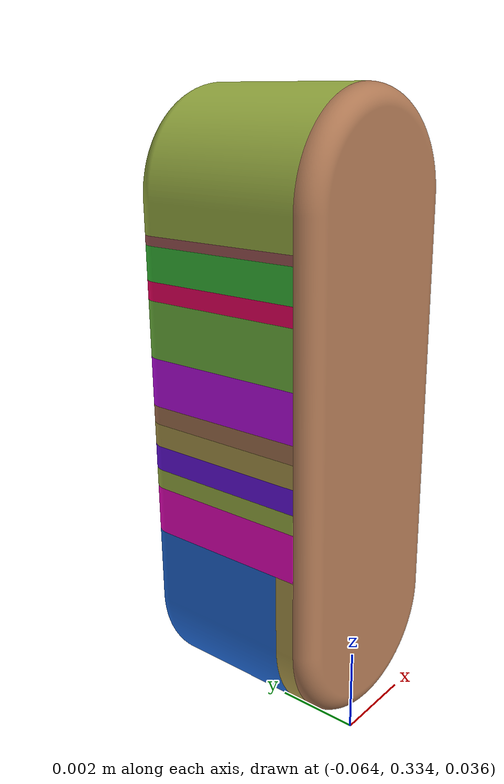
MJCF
<!-- mass 와 inertia 가 없네.. -->
<mujoco>
    <asset>
            <mesh name="Tablet_posmod_collision_(1)" file="./Tablet_posmod_collision_(1).obj" scale="0.001 0.001 0.001"/>
            <mesh name="Tablet_posmod_collision_(10)" file="./Tablet_posmod_collision_(10).obj" scale="0.001 0.001 0.001"/>
            <mesh name="Tablet_posmod_collision_(11)" file="./Tablet_posmod_collision_(11).obj" scale="0.001 0.001 0.001"/>
            <mesh name="Tablet_posmod_collision_(12)" file="./Tablet_posmod_collision_(12).obj" scale="0.001 0.001 0.001"/>
            <mesh name="Tablet_posmod_collision_(13)" file="./Tablet_posmod_collision_(13).obj" scale="0.001 0.001 0.001"/>
            <mesh name="Tablet_posmod_collision_(14)" file="./Tablet_posmod_collision_(14).obj" scale="0.001 0.001 0.001"/>
            <mesh name="Tablet_posmod_collision_(15)" file="./Tablet_posmod_collision_(15).obj" scale="0.001 0.001 0.001"/>
            <mesh name="Tablet_posmod_collision_(16)" file="./Tablet_posmod_collision_(16).obj" scale="0.001 0.001 0.001"/>
            <mesh name="Tablet_posmod_collision_(17)" file="./Tablet_posmod_collision_(17).obj" scale="0.001 0.001 0.001"/>
            <mesh name="Tablet_posmod_collision_(18)" file="./Tablet_posmod_collision_(18).obj" scale="0.001 0.001 0.001"/>
            <mesh name="Tablet_posmod_collision_(19)" file="./Tablet_posmod_collision_(19).obj" scale="0.001 0.001 0.001"/>
            <mesh name="Tablet_posmod_collision_(2)" file="./Tablet_posmod_collision_(2).obj" scale="0.001 0.001 0.001"/>
            <mesh name="Tablet_posmod_collision_(3)" file="./Tablet_posmod_collision_(3).obj" scale="0.001 0.001 0.001"/>
            <mesh name="Tablet_posmod_collision_(4)" file="./Tablet_posmod_collision_(4).obj" scale="0.001 0.001 0.001"/>
            <mesh name="Tablet_posmod_collision_(5)" file="./Tablet_posmod_collision_(5).obj" scale="0.001 0.001 0.001"/>
            <mesh name="Tablet_posmod_collision_(6)" file="./Tablet_posmod_collision_(6).obj" scale="0.001 0.001 0.001"/>
            <mesh name="Tablet_posmod_collision_(7)" file="./Tablet_posmod_collision_(7).obj" scale="0.001 0.001 0.001"/>
            <mesh name="Tablet_posmod_collision_(8)" file="./Tablet_posmod_collision_(8).obj" scale="0.001 0.001 0.001"/>
            <mesh name="Tablet_posmod_collision_(9)" file="./Tablet_posmod_collision_(9).obj" scale="0.001 0.001 0.001"/>

    </asset>
    <worldbody>
        <body name="tablet" pos="-0.06 0.33947925 0.03555163" quat="0.70710678 0.70710678 0 0">
            <geom rgba="0.675 0.465 0.325 1" type="mesh" mesh="Tablet_posmod_collision_(1)"/>
            <geom rgba="0.700 0.620 0.300 1" type="mesh" mesh="Tablet_posmod_collision_(10)"/>
            <geom rgba="0.635 0.725 0.275 1" type="mesh" mesh="Tablet_posmod_collision_(11)"/>
            <geom rgba="0.450 0.750 0.250 1" type="mesh" mesh="Tablet_posmod_collision_(12)"/>
            <geom rgba="0.225 0.775 0.225 1" type="mesh" mesh="Tablet_posmod_collision_(13)"/>
            <geom rgba="0.200 0.800 0.440 1" type="mesh" mesh="Tablet_posmod_collision_(14)"/>
            <geom rgba="0.175 0.825 0.695 1" type="mesh" mesh="Tablet_posmod_collision_(15)"/>
            <geom rgba="0.150 0.710 0.850 1" type="mesh" mesh="Tablet_posmod_collision_(16)"/>
            <geom rgba="0.125 0.425 0.875 1" type="mesh" mesh="Tablet_posmod_collision_(17)"/>
            <geom rgba="0.100 0.100 0.900 1" type="mesh" mesh="Tablet_posmod_collision_(18)"/>

            <geom rgba="0.770 0.050 0.950 1" type="mesh" mesh="Tablet_posmod_collision_(2)"/>
            <geom rgba="0.975 0.025 0.785 1" type="mesh" mesh="Tablet_posmod_collision_(3)"/>
            <geom rgba="1.000 0.000 0.400 1" type="mesh" mesh="Tablet_posmod_collision_(4)"/>
            <geom rgba="0.650 0.350 0.350 1" type="mesh" mesh="Tablet_posmod_collision_(5)"/>
            <geom rgba="0.675 0.465 0.325 1" type="mesh" mesh="Tablet_posmod_collision_(6)"/>
            <geom rgba="0.700 0.620 0.300 1" type="mesh" mesh="Tablet_posmod_collision_(7)"/>
            <geom rgba="0.635 0.725 0.275 1" type="mesh" mesh="Tablet_posmod_collision_(8)"/>
            <geom rgba="0.450 0.750 0.250 1" type="mesh" mesh="Tablet_posmod_collision_(9)"/>
            <geom rgba="0.415 0.075 0.925 1" type="mesh" mesh="Tablet_posmod_collision_(19)"/>
            <geom rgba="0.415 0.075 0.925 1" type="mesh" mesh="Tablet_posmod_collision_(19)"/>
            <geom rgba="0.415 0.075 0.925 1" type="mesh" mesh="Tablet_posmod_collision_(19)"/>

        </body>

    </worldbody>
</mujoco>
